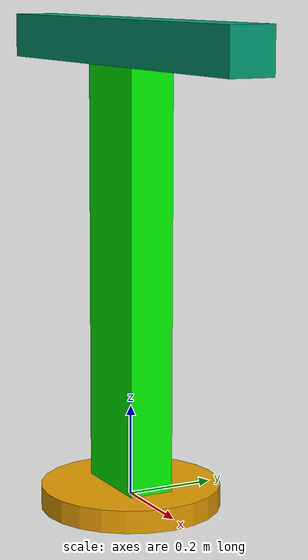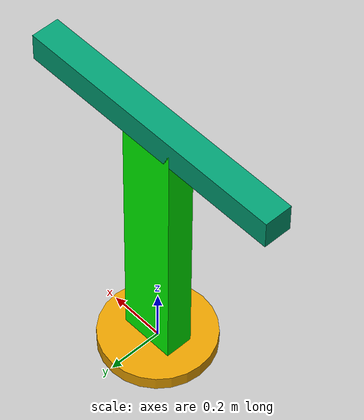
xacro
<?xml version="1.0"?>
<robot name="example_bot1" xmlns:xacro="http://www.ros.org/wiki/xacro">
    <xacro:include filename="$(find sim1)/model/robot.gazebo"/>
    <material name="green">
        <color rgba="0 1 0 1"/>
    </material>
    <link name="base_link">
        <visual>
            <origin rpy="0 0 0" xyz="0 0 0"/>
            <geometry>
                <cylinder radius="0.2" length="0.05"/>
            </geometry>
        </visual>
        <collision>
            <origin rpy="0 0 0" xyz="0 0 0"/>
            <geometry>
                <cylinder radius="0.2" length="0.05"/>
            </geometry>
        </collision>
        <inertial>
            <origin rpy="0 0 0" xyz="0 0 0"/>
            <mass value="1"/>
            <inertia ixx="100" iyy="100" izz="100" ixy="0" iyz="0" ixz="0"/>
        </inertial>
    </link>
    <link name="part1_link">
        <visual>
            <geometry>
                <box size="0.2 0.1 1"/>
            </geometry>
            <material name="green"/>
            <origin rpy="0 -1.57 0" xyz="-0.5 0 0"/>
        </visual>
        <collision>
            <geometry>
                <box size="0.2 0.1 1"/>
            </geometry>
            <material name="green"/>
            <origin rpy="0 -1.57 0" xyz="-0.5 0 0"/>
        </collision>
        <inertial>
            <origin rpy="0 0 0" xyz="0 0 0"/>
            <mass value="1"/>
            <inertia ixx="100" iyy="100" izz="100" ixy="0" iyz="0" ixz="0"/>
        </inertial>
    </link>
    <link name="part2_link">
        <visual>
            <geometry>
                <box size="1.0 0.1 0.1"/>
            </geometry>
            <origin rpy="0 0 0" xyz="0 0 0"/>
        </visual>
        <collision>
            <geometry>
                <box size="1.0 0.1 0.1"/>
            </geometry>
            <origin rpy="0 0 0" xyz="0 0 0"/>
        </collision>
        <inertial>
            <origin rpy="0 0 0" xyz="0 0 0"/>
            <mass value="1"/>
            <inertia ixx="100" iyy="100" izz="100" ixy="0" iyz="0" ixz="0"/>
        </inertial>
    </link>
    <joint name="base_arm_joint" type="revolute">
        <parent link="base_link"/>
        <child link="part1_link"/>
        <origin rpy="0 1.57 0" xyz="0 0 0"/>
        <limit effort="1000" lower="0.0" upper="1.57" velocity="1.0"/>
        <command_interface name="position">
            <param name="min">0</param>
            <param name="max">1.57</param>
        </command_interface>
        <state_interface name="position">
            <param name="initial_value">0.0</param>
        </state_interface>
    </joint>
    <joint name="part1_part2_joint" type="prismatic">
        <parent link="part1_link"/>
        <child link="part2_link"/>
        <limit effort="1000" lower="-0.5" upper="0.5" velocity="1.0"/>
        <origin rpy="0 1.57 0" xyz="-1 0 0"/>
        <command_interface name="position">
            <param name="min">-0.5</param>
            <param name="max">0.5</param>
        </command_interface>
        <state_interface name="position">
            <param name="initial_value">0.0</param>
        </state_interface>
    </joint>
    <ros2_control name="example_bot1" type="system">
        <hardware>
            <plugin>my_hw_if/MyRobotInterface</plugin>
        </hardware>
        <joint name="base_arm_joint" type="revolute">
            <parent link="base_link"/>
            <child link="part1_link"/>
            <origin rpy="0 1.57 0" xyz="0 0 0"/>
            <limit effort="1000" lower="0.0" upper="1.57" velocity="1.0"/>
            <command_interface name="position">
                <param name="min">0</param>
                <param name="max">1.57</param>
            </command_interface>
            <state_interface name="position">
                <param name="initial_value">0.0</param>
            </state_interface>
        </joint>
        <joint name="part1_part2_joint" type="prismatic">
            <parent link="part1_link"/>
            <child link="part2_link"/>
            <limit effort="1000" lower="-0.5" upper="0.5" velocity="1.0"/>
            <origin rpy="0 1.57 0" xyz="-1 0 0"/>
            <command_interface name="position">
                <param name="min">-0.5</param>
                <param name="max">0.5</param>
            </command_interface>
            <state_interface name="position">
                <param name="initial_value">0.0</param>
            </state_interface>
        </joint>
    </ros2_control>
</robot>
